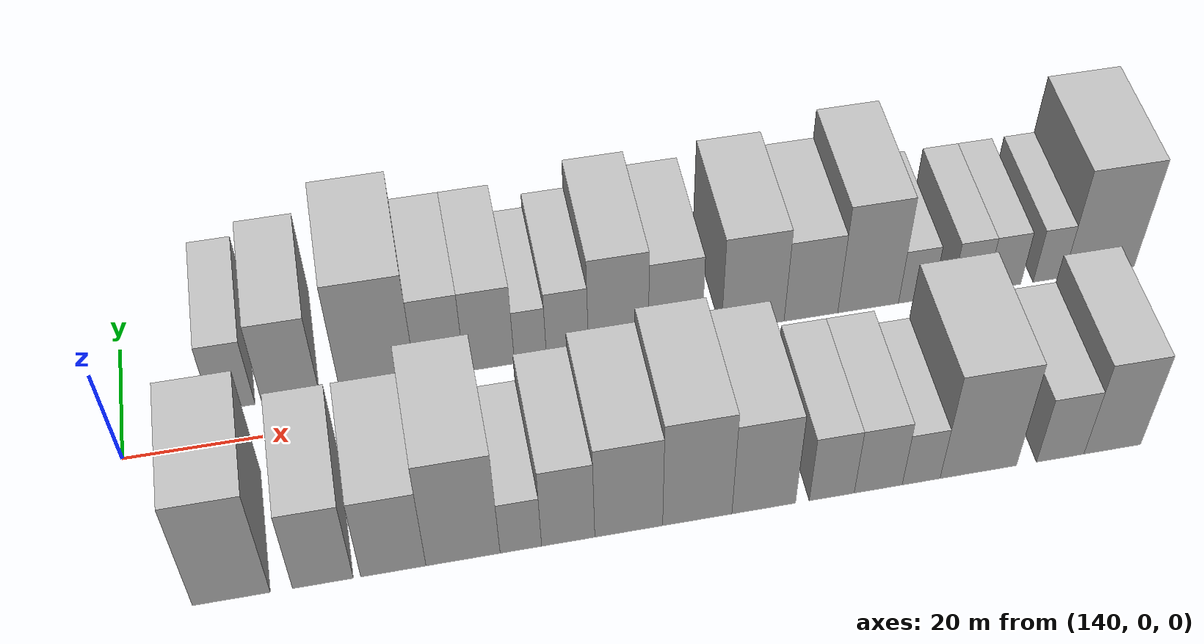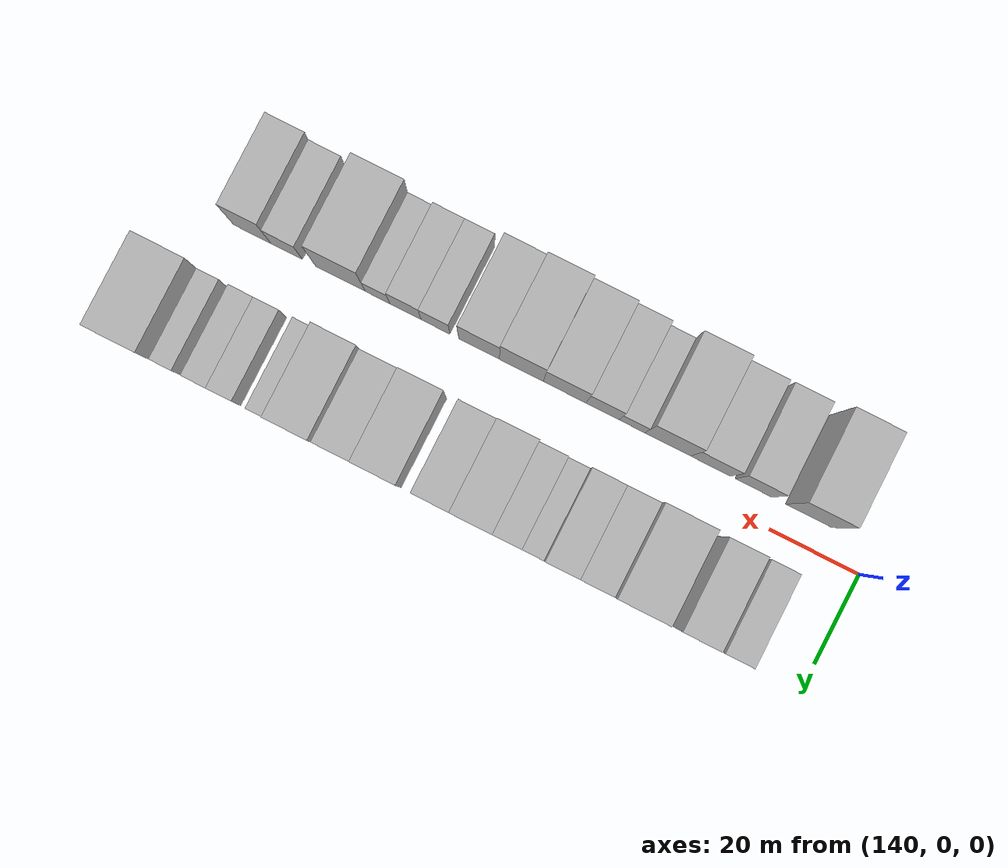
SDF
<sdf version="1.6">
 <world name="default">
  <model name="building_16">
   <static>1</static>
   <pose>156.1337 16.0000 0 0.000000 0.000000 1.570796</pose>
   <link name="link">
    <pose>0 0 7.50 0 0 0</pose>
    <collision name="collision"><geometry><box><size>20.0000 6.3218 15.0000</size></box></geometry></collision>
    <visual name="visual">
     <cast_shadows>0</cast_shadows>
     <geometry><box><size>20.0000 6.3218 15.0000</size></box></geometry>
     <material>
      <script>
       <uri>model://HANNAS_wall/materials/scripts</uri>
       <uri>model://HANNAS_wall/materials/textures</uri>
       <name>vrc/HANNAS_wall</name>
      </script>
     </material>
    </visual>
   </link>
  </model>
  <model name="building_17">
   <static>1</static>
   <pose>164.5155 16.0000 0 0.000000 0.000000 1.570796</pose>
   <link name="link">
    <pose>0 0 9.00 0 0 0</pose>
    <collision name="collision"><geometry><box><size>20.0000 8.4418 18.0000</size></box></geometry></collision>
    <visual name="visual">
     <cast_shadows>0</cast_shadows>
     <geometry><box><size>20.0000 8.4418 18.0000</size></box></geometry>
     <material>
      <script>
       <uri>model://HANNAS_wall/materials/scripts</uri>
       <uri>model://HANNAS_wall/materials/textures</uri>
       <name>vrc/HANNAS_wall</name>
      </script>
     </material>
    </visual>
   </link>
  </model>
  <model name="building_18">
   <static>1</static>
   <pose>177.3645 16.0000 0 0.000000 0.000000 1.570796</pose>
   <link name="link">
    <pose>0 0 12.00 0 0 0</pose>
    <collision name="collision"><geometry><box><size>20.0000 11.2562 24.0000</size></box></geometry></collision>
    <visual name="visual">
     <cast_shadows>0</cast_shadows>
     <geometry><box><size>20.0000 11.2562 24.0000</size></box></geometry>
     <material>
      <script>
       <uri>model://HANNAS_wall/materials/scripts</uri>
       <uri>model://HANNAS_wall/materials/textures</uri>
       <name>vrc/HANNAS_wall</name>
      </script>
     </material>
    </visual>
   </link>
  </model>
  <model name="building_19">
   <static>1</static>
   <pose>186.6468 16.0000 0 0.000000 0.000000 1.570796</pose>
   <link name="link">
    <pose>0 0 9.00 0 0 0</pose>
    <collision name="collision"><geometry><box><size>20.0000 7.3085 18.0000</size></box></geometry></collision>
    <visual name="visual">
     <cast_shadows>0</cast_shadows>
     <geometry><box><size>20.0000 7.3085 18.0000</size></box></geometry>
     <material>
      <script>
       <uri>model://HANNAS_wall/materials/scripts</uri>
       <uri>model://HANNAS_wall/materials/textures</uri>
       <name>vrc/HANNAS_wall</name>
      </script>
     </material>
    </visual>
   </link>
  </model>
  <model name="building_20">
   <static>1</static>
   <pose>194.0497 16.0000 0 0.000000 0.000000 1.570796</pose>
   <link name="link">
    <pose>0 0 9.00 0 0 0</pose>
    <collision name="collision"><geometry><box><size>20.0000 7.4973 18.0000</size></box></geometry></collision>
    <visual name="visual">
     <cast_shadows>0</cast_shadows>
     <geometry><box><size>20.0000 7.4973 18.0000</size></box></geometry>
     <material>
      <script>
       <uri>model://HANNAS_wall/materials/scripts</uri>
       <uri>model://HANNAS_wall/materials/textures</uri>
       <name>vrc/HANNAS_wall</name>
      </script>
     </material>
    </visual>
   </link>
  </model>
  <model name="building_21">
   <static>1</static>
   <pose>200.2212 16.0000 0 0.000000 0.000000 1.570796</pose>
   <link name="link">
    <pose>0 0 6.00 0 0 0</pose>
    <collision name="collision"><geometry><box><size>20.0000 4.8457 12.0000</size></box></geometry></collision>
    <visual name="visual">
     <cast_shadows>0</cast_shadows>
     <geometry><box><size>20.0000 4.8457 12.0000</size></box></geometry>
     <material>
      <script>
       <uri>model://HANNAS_wall/materials/scripts</uri>
       <uri>model://HANNAS_wall/materials/textures</uri>
       <name>vrc/HANNAS_wall</name>
      </script>
     </material>
    </visual>
   </link>
  </model>
  <model name="building_22">
   <static>1</static>
   <pose>205.8460 16.0000 0 0.000000 0.000000 1.570796</pose>
   <link name="link">
    <pose>0 0 7.50 0 0 0</pose>
    <collision name="collision"><geometry><box><size>20.0000 6.4039 15.0000</size></box></geometry></collision>
    <visual name="visual">
     <cast_shadows>0</cast_shadows>
     <geometry><box><size>20.0000 6.4039 15.0000</size></box></geometry>
     <material>
      <script>
       <uri>model://HANNAS_wall/materials/scripts</uri>
       <uri>model://HANNAS_wall/materials/textures</uri>
       <name>vrc/HANNAS_wall</name>
      </script>
     </material>
    </visual>
   </link>
  </model>
  <model name="building_23">
   <static>1</static>
   <pose>213.6268 16.0000 0 0.000000 0.000000 1.570796</pose>
   <link name="link">
    <pose>0 0 10.50 0 0 0</pose>
    <collision name="collision"><geometry><box><size>20.0000 9.1577 21.0000</size></box></geometry></collision>
    <visual name="visual">
     <cast_shadows>0</cast_shadows>
     <geometry><box><size>20.0000 9.1577 21.0000</size></box></geometry>
     <material>
      <script>
       <uri>model://HANNAS_wall/materials/scripts</uri>
       <uri>model://HANNAS_wall/materials/textures</uri>
       <name>vrc/HANNAS_wall</name>
      </script>
     </material>
    </visual>
   </link>
  </model>
  <model name="building_24">
   <static>1</static>
   <pose>222.3329 16.0000 0 0.000000 0.000000 1.570796</pose>
   <link name="link">
    <pose>0 0 9.00 0 0 0</pose>
    <collision name="collision"><geometry><box><size>20.0000 8.2544 18.0000</size></box></geometry></collision>
    <visual name="visual">
     <cast_shadows>0</cast_shadows>
     <geometry><box><size>20.0000 8.2544 18.0000</size></box></geometry>
     <material>
      <script>
       <uri>model://HANNAS_wall/materials/scripts</uri>
       <uri>model://HANNAS_wall/materials/textures</uri>
       <name>vrc/HANNAS_wall</name>
      </script>
     </material>
    </visual>
   </link>
  </model>
  <model name="building_25">
   <static>1</static>
   <pose>234.3625 16.0000 0 0.000000 0.000000 1.570796</pose>
   <link name="link">
    <pose>0 0 10.50 0 0 0</pose>
    <collision name="collision"><geometry><box><size>20.0000 9.8048 21.0000</size></box></geometry></collision>
    <visual name="visual">
     <cast_shadows>0</cast_shadows>
     <geometry><box><size>20.0000 9.8048 21.0000</size></box></geometry>
     <material>
      <script>
       <uri>model://HANNAS_wall/materials/scripts</uri>
       <uri>model://HANNAS_wall/materials/textures</uri>
       <name>vrc/HANNAS_wall</name>
      </script>
     </material>
    </visual>
   </link>
  </model>
  <model name="building_26">
   <static>1</static>
   <pose>243.4888 16.0000 0 0.000000 0.000000 1.570796</pose>
   <link name="link">
    <pose>0 0 9.00 0 0 0</pose>
    <collision name="collision"><geometry><box><size>20.0000 8.4480 18.0000</size></box></geometry></collision>
    <visual name="visual">
     <cast_shadows>0</cast_shadows>
     <geometry><box><size>20.0000 8.4480 18.0000</size></box></geometry>
     <material>
      <script>
       <uri>model://HANNAS_wall/materials/scripts</uri>
       <uri>model://HANNAS_wall/materials/textures</uri>
       <name>vrc/HANNAS_wall</name>
      </script>
     </material>
    </visual>
   </link>
  </model>
  <model name="building_27">
   <static>1</static>
   <pose>252.5334 16.0000 0 0.000000 0.000000 1.570796</pose>
   <link name="link">
    <pose>0 0 12.00 0 0 0</pose>
    <collision name="collision"><geometry><box><size>20.0000 9.6411 24.0000</size></box></geometry></collision>
    <visual name="visual">
     <cast_shadows>0</cast_shadows>
     <geometry><box><size>20.0000 9.6411 24.0000</size></box></geometry>
     <material>
      <script>
       <uri>model://HANNAS_wall/materials/scripts</uri>
       <uri>model://HANNAS_wall/materials/textures</uri>
       <name>vrc/HANNAS_wall</name>
      </script>
     </material>
    </visual>
   </link>
  </model>
  <model name="building_28">
   <static>1</static>
   <pose>260.0871 16.0000 0 0.000000 0.000000 1.570796</pose>
   <link name="link">
    <pose>0 0 6.00 0 0 0</pose>
    <collision name="collision"><geometry><box><size>20.0000 5.4663 12.0000</size></box></geometry></collision>
    <visual name="visual">
     <cast_shadows>0</cast_shadows>
     <geometry><box><size>20.0000 5.4663 12.0000</size></box></geometry>
     <material>
      <script>
       <uri>model://HANNAS_wall/materials/scripts</uri>
       <uri>model://HANNAS_wall/materials/textures</uri>
       <name>vrc/HANNAS_wall</name>
      </script>
     </material>
    </visual>
   </link>
  </model>
  <model name="building_29">
   <static>1</static>
   <pose>268.6604 16.0000 0 0.000000 0.000000 1.570796</pose>
   <link name="link">
    <pose>0 0 6.00 0 0 0</pose>
    <collision name="collision"><geometry><box><size>20.0000 5.6803 12.0000</size></box></geometry></collision>
    <visual name="visual">
     <cast_shadows>0</cast_shadows>
     <geometry><box><size>20.0000 5.6803 12.0000</size></box></geometry>
     <material>
      <script>
       <uri>model://HANNAS_wall/materials/scripts</uri>
       <uri>model://HANNAS_wall/materials/textures</uri>
       <name>vrc/HANNAS_wall</name>
      </script>
     </material>
    </visual>
   </link>
  </model>
  <model name="building_30">
   <static>1</static>
   <pose>274.2593 16.0000 0 0.000000 0.000000 1.570796</pose>
   <link name="link">
    <pose>0 0 6.00 0 0 0</pose>
    <collision name="collision"><geometry><box><size>20.0000 5.5173 12.0000</size></box></geometry></collision>
    <visual name="visual">
     <cast_shadows>0</cast_shadows>
     <geometry><box><size>20.0000 5.5173 12.0000</size></box></geometry>
     <material>
      <script>
       <uri>model://HANNAS_wall/materials/scripts</uri>
       <uri>model://HANNAS_wall/materials/textures</uri>
       <name>vrc/HANNAS_wall</name>
      </script>
     </material>
    </visual>
   </link>
  </model>
  <model name="building_31">
   <static>1</static>
   <pose>281.4909 16.0000 0 0.000000 0.000000 1.570796</pose>
   <link name="link">
    <pose>0 0 6.00 0 0 0</pose>
    <collision name="collision"><geometry><box><size>20.0000 4.9458 12.0000</size></box></geometry></collision>
    <visual name="visual">
     <cast_shadows>0</cast_shadows>
     <geometry><box><size>20.0000 4.9458 12.0000</size></box></geometry>
     <material>
      <script>
       <uri>model://HANNAS_wall/materials/scripts</uri>
       <uri>model://HANNAS_wall/materials/textures</uri>
       <name>vrc/HANNAS_wall</name>
      </script>
     </material>
    </visual>
   </link>
  </model>
  <model name="building_32">
   <static>1</static>
   <pose>289.7567 16.0000 0 0.000000 0.000000 1.570796</pose>
   <link name="link">
    <pose>0 0 12.00 0 0 0</pose>
    <collision name="collision"><geometry><box><size>20.0000 11.5858 24.0000</size></box></geometry></collision>
    <visual name="visual">
     <cast_shadows>0</cast_shadows>
     <geometry><box><size>20.0000 11.5858 24.0000</size></box></geometry>
     <material>
      <script>
       <uri>model://HANNAS_wall/materials/scripts</uri>
       <uri>model://HANNAS_wall/materials/textures</uri>
       <name>vrc/HANNAS_wall</name>
      </script>
     </material>
    </visual>
   </link>
  </model>
  <model name="building_48">
   <static>1</static>
   <pose>154.0568 -16.0000 0 0.000000 0.000000 1.570796</pose>
   <link name="link">
    <pose>0 0 12.00 0 0 0</pose>
    <collision name="collision"><geometry><box><size>20.0000 10.4750 24.0000</size></box></geometry></collision>
    <visual name="visual">
     <cast_shadows>0</cast_shadows>
     <geometry><box><size>20.0000 10.4750 24.0000</size></box></geometry>
     <material>
      <script>
       <uri>model://HANNAS_wall/materials/scripts</uri>
       <uri>model://HANNAS_wall/materials/textures</uri>
       <name>vrc/HANNAS_wall</name>
      </script>
     </material>
    </visual>
   </link>
  </model>
  <model name="building_49">
   <static>1</static>
   <pose>166.4343 -16.0000 0 0.000000 0.000000 1.570796</pose>
   <link name="link">
    <pose>0 0 9.00 0 0 0</pose>
    <collision name="collision"><geometry><box><size>20.0000 8.2800 18.0000</size></box></geometry></collision>
    <visual name="visual">
     <cast_shadows>0</cast_shadows>
     <geometry><box><size>20.0000 8.2800 18.0000</size></box></geometry>
     <material>
      <script>
       <uri>model://HANNAS_wall/materials/scripts</uri>
       <uri>model://HANNAS_wall/materials/textures</uri>
       <name>vrc/HANNAS_wall</name>
      </script>
     </material>
    </visual>
   </link>
  </model>
  <model name="building_50">
   <static>1</static>
   <pose>176.0596 -16.0000 0 0.000000 0.000000 1.570796</pose>
   <link name="link">
    <pose>0 0 9.00 0 0 0</pose>
    <collision name="collision"><geometry><box><size>20.0000 8.9707 18.0000</size></box></geometry></collision>
    <visual name="visual">
     <cast_shadows>0</cast_shadows>
     <geometry><box><size>20.0000 8.9707 18.0000</size></box></geometry>
     <material>
      <script>
       <uri>model://HANNAS_wall/materials/scripts</uri>
       <uri>model://HANNAS_wall/materials/textures</uri>
       <name>vrc/HANNAS_wall</name>
      </script>
     </material>
    </visual>
   </link>
  </model>
  <model name="building_51">
   <static>1</static>
   <pose>185.6856 -16.0000 0 0.000000 0.000000 1.570796</pose>
   <link name="link">
    <pose>0 0 12.00 0 0 0</pose>
    <collision name="collision"><geometry><box><size>20.0000 10.2813 24.0000</size></box></geometry></collision>
    <visual name="visual">
     <cast_shadows>0</cast_shadows>
     <geometry><box><size>20.0000 10.2813 24.0000</size></box></geometry>
     <material>
      <script>
       <uri>model://HANNAS_wall/materials/scripts</uri>
       <uri>model://HANNAS_wall/materials/textures</uri>
       <name>vrc/HANNAS_wall</name>
      </script>
     </material>
    </visual>
   </link>
  </model>
  <model name="building_52">
   <static>1</static>
   <pose>193.7229 -16.0000 0 0.000000 0.000000 1.570796</pose>
   <link name="link">
    <pose>0 0 6.00 0 0 0</pose>
    <collision name="collision"><geometry><box><size>20.0000 5.7933 12.0000</size></box></geometry></collision>
    <visual name="visual">
     <cast_shadows>0</cast_shadows>
     <geometry><box><size>20.0000 5.7933 12.0000</size></box></geometry>
     <material>
      <script>
       <uri>model://HANNAS_wall/materials/scripts</uri>
       <uri>model://HANNAS_wall/materials/textures</uri>
       <name>vrc/HANNAS_wall</name>
      </script>
     </material>
    </visual>
   </link>
  </model>
  <model name="building_53">
   <static>1</static>
   <pose>200.3616 -16.0000 0 0.000000 0.000000 1.570796</pose>
   <link name="link">
    <pose>0 0 9.00 0 0 0</pose>
    <collision name="collision"><geometry><box><size>20.0000 7.4841 18.0000</size></box></geometry></collision>
    <visual name="visual">
     <cast_shadows>0</cast_shadows>
     <geometry><box><size>20.0000 7.4841 18.0000</size></box></geometry>
     <material>
      <script>
       <uri>model://HANNAS_wall/materials/scripts</uri>
       <uri>model://HANNAS_wall/materials/textures</uri>
       <name>vrc/HANNAS_wall</name>
      </script>
     </material>
    </visual>
   </link>
  </model>
  <model name="building_54">
   <static>1</static>
   <pose>208.9121 -16.0000 0 0.000000 0.000000 1.570796</pose>
   <link name="link">
    <pose>0 0 10.50 0 0 0</pose>
    <collision name="collision"><geometry><box><size>20.0000 9.6168 21.0000</size></box></geometry></collision>
    <visual name="visual">
     <cast_shadows>0</cast_shadows>
     <geometry><box><size>20.0000 9.6168 21.0000</size></box></geometry>
     <material>
      <script>
       <uri>model://HANNAS_wall/materials/scripts</uri>
       <uri>model://HANNAS_wall/materials/textures</uri>
       <name>vrc/HANNAS_wall</name>
      </script>
     </material>
    </visual>
   </link>
  </model>
  <model name="building_55">
   <static>1</static>
   <pose>218.6758 -16.0000 0 0.000000 0.000000 1.570796</pose>
   <link name="link">
    <pose>0 0 12.00 0 0 0</pose>
    <collision name="collision"><geometry><box><size>20.0000 9.9107 24.0000</size></box></geometry></collision>
    <visual name="visual">
     <cast_shadows>0</cast_shadows>
     <geometry><box><size>20.0000 9.9107 24.0000</size></box></geometry>
     <material>
      <script>
       <uri>model://HANNAS_wall/materials/scripts</uri>
       <uri>model://HANNAS_wall/materials/textures</uri>
       <name>vrc/HANNAS_wall</name>
      </script>
     </material>
    </visual>
   </link>
  </model>
  <model name="building_56">
   <static>1</static>
   <pose>228.2304 -16.0000 0 0.000000 0.000000 1.570796</pose>
   <link name="link">
    <pose>0 0 10.50 0 0 0</pose>
    <collision name="collision"><geometry><box><size>20.0000 9.1983 21.0000</size></box></geometry></collision>
    <visual name="visual">
     <cast_shadows>0</cast_shadows>
     <geometry><box><size>20.0000 9.1983 21.0000</size></box></geometry>
     <material>
      <script>
       <uri>model://HANNAS_wall/materials/scripts</uri>
       <uri>model://HANNAS_wall/materials/textures</uri>
       <name>vrc/HANNAS_wall</name>
      </script>
     </material>
    </visual>
   </link>
  </model>
  <model name="building_57">
   <static>1</static>
   <pose>238.1071 -16.0000 0 0.000000 0.000000 1.570796</pose>
   <link name="link">
    <pose>0 0 7.50 0 0 0</pose>
    <collision name="collision"><geometry><box><size>20.0000 6.5552 15.0000</size></box></geometry></collision>
    <visual name="visual">
     <cast_shadows>0</cast_shadows>
     <geometry><box><size>20.0000 6.5552 15.0000</size></box></geometry>
     <material>
      <script>
       <uri>model://HANNAS_wall/materials/scripts</uri>
       <uri>model://HANNAS_wall/materials/textures</uri>
       <name>vrc/HANNAS_wall</name>
      </script>
     </material>
    </visual>
   </link>
  </model>
  <model name="building_58">
   <static>1</static>
   <pose>244.9085 -16.0000 0 0.000000 0.000000 1.570796</pose>
   <link name="link">
    <pose>0 0 7.50 0 0 0</pose>
    <collision name="collision"><geometry><box><size>20.0000 7.0475 15.0000</size></box></geometry></collision>
    <visual name="visual">
     <cast_shadows>0</cast_shadows>
     <geometry><box><size>20.0000 7.0475 15.0000</size></box></geometry>
     <material>
      <script>
       <uri>model://HANNAS_wall/materials/scripts</uri>
       <uri>model://HANNAS_wall/materials/textures</uri>
       <name>vrc/HANNAS_wall</name>
      </script>
     </material>
    </visual>
   </link>
  </model>
  <model name="building_59">
   <static>1</static>
   <pose>251.2257 -16.0000 0 0.000000 0.000000 1.570796</pose>
   <link name="link">
    <pose>0 0 6.00 0 0 0</pose>
    <collision name="collision"><geometry><box><size>20.0000 5.5869 12.0000</size></box></geometry></collision>
    <visual name="visual">
     <cast_shadows>0</cast_shadows>
     <geometry><box><size>20.0000 5.5869 12.0000</size></box></geometry>
     <material>
      <script>
       <uri>model://HANNAS_wall/materials/scripts</uri>
       <uri>model://HANNAS_wall/materials/textures</uri>
       <name>vrc/HANNAS_wall</name>
      </script>
     </material>
    </visual>
   </link>
  </model>
  <model name="building_60">
   <static>1</static>
   <pose>259.7210 -16.0000 0 0.000000 0.000000 1.570796</pose>
   <link name="link">
    <pose>0 0 12.00 0 0 0</pose>
    <collision name="collision"><geometry><box><size>20.0000 11.4037 24.0000</size></box></geometry></collision>
    <visual name="visual">
     <cast_shadows>0</cast_shadows>
     <geometry><box><size>20.0000 11.4037 24.0000</size></box></geometry>
     <material>
      <script>
       <uri>model://HANNAS_wall/materials/scripts</uri>
       <uri>model://HANNAS_wall/materials/textures</uri>
       <name>vrc/HANNAS_wall</name>
      </script>
     </material>
    </visual>
   </link>
  </model>
  <model name="building_61">
   <static>1</static>
   <pose>271.9948 -16.0000 0 0.000000 0.000000 1.570796</pose>
   <link name="link">
    <pose>0 0 7.50 0 0 0</pose>
    <collision name="collision"><geometry><box><size>20.0000 7.1439 15.0000</size></box></geometry></collision>
    <visual name="visual">
     <cast_shadows>0</cast_shadows>
     <geometry><box><size>20.0000 7.1439 15.0000</size></box></geometry>
     <material>
      <script>
       <uri>model://HANNAS_wall/materials/scripts</uri>
       <uri>model://HANNAS_wall/materials/textures</uri>
       <name>vrc/HANNAS_wall</name>
      </script>
     </material>
    </visual>
   </link>
  </model>
  <model name="building_62">
   <static>1</static>
   <pose>279.8721 -16.0000 0 0.000000 0.000000 1.570796</pose>
   <link name="link">
    <pose>0 0 10.50 0 0 0</pose>
    <collision name="collision"><geometry><box><size>20.0000 8.6106 21.0000</size></box></geometry></collision>
    <visual name="visual">
     <cast_shadows>0</cast_shadows>
     <geometry><box><size>20.0000 8.6106 21.0000</size></box></geometry>
     <material>
      <script>
       <uri>model://HANNAS_wall/materials/scripts</uri>
       <uri>model://HANNAS_wall/materials/textures</uri>
       <name>vrc/HANNAS_wall</name>
      </script>
     </material>
    </visual>
   </link>
  </model>
 </world>
</sdf>
